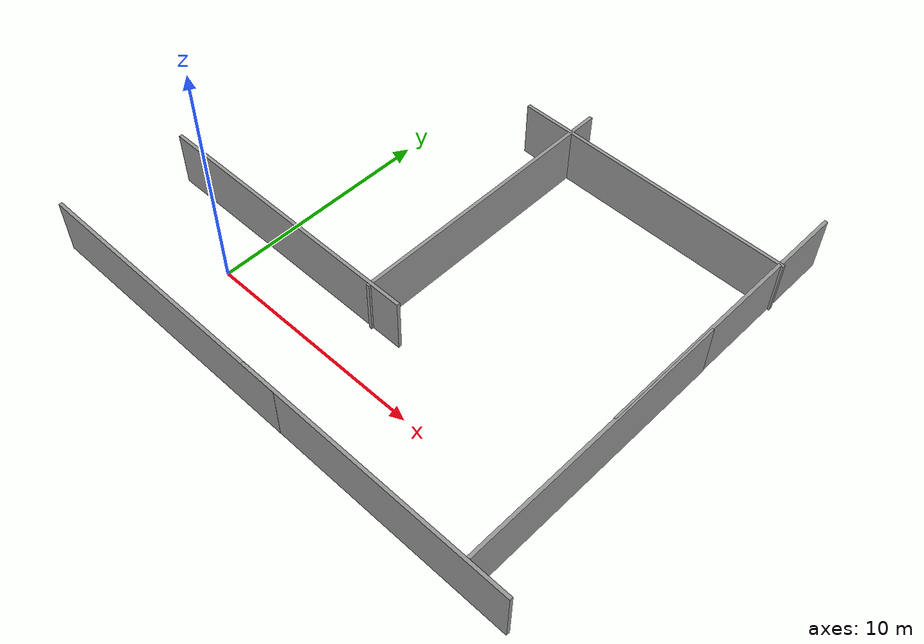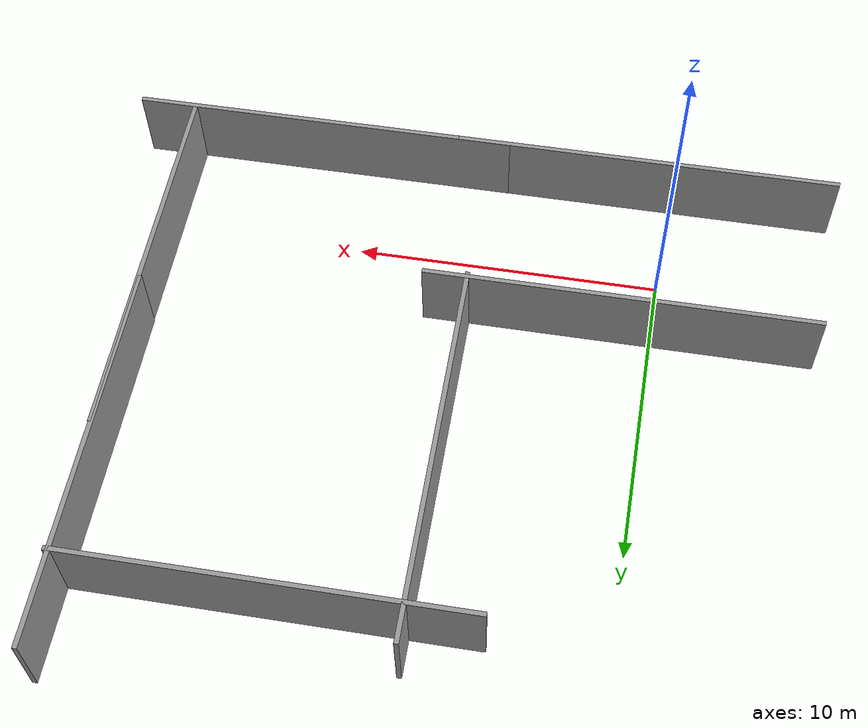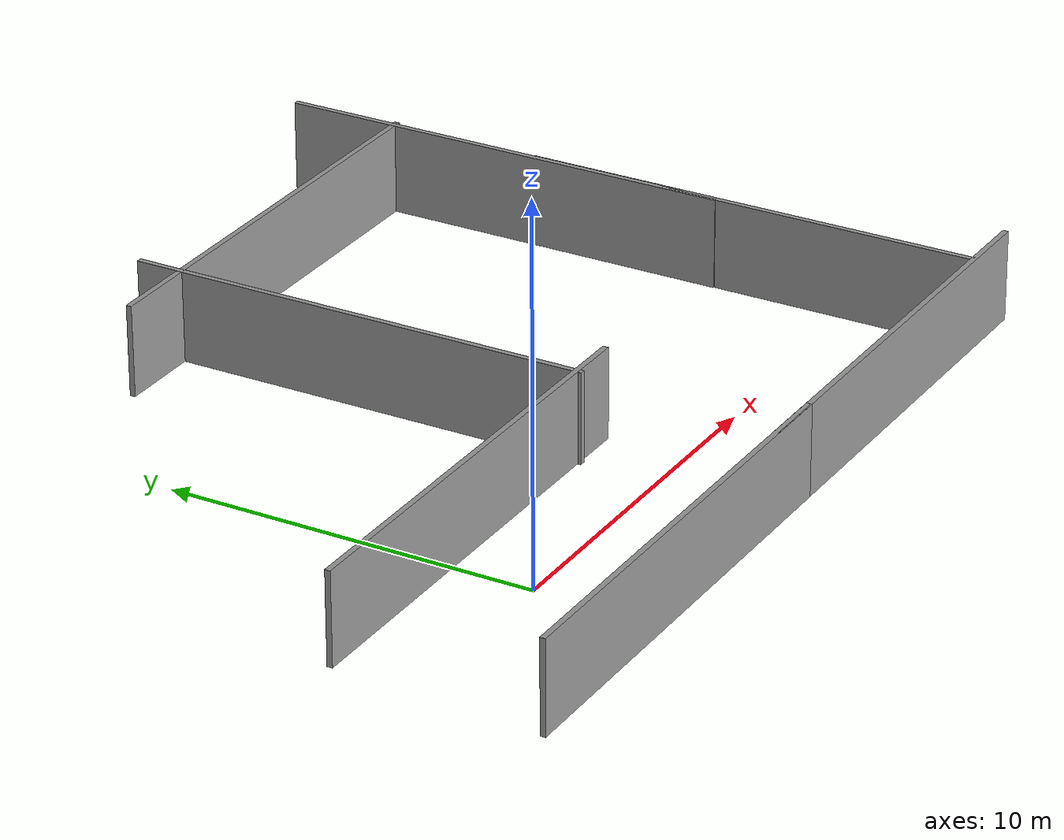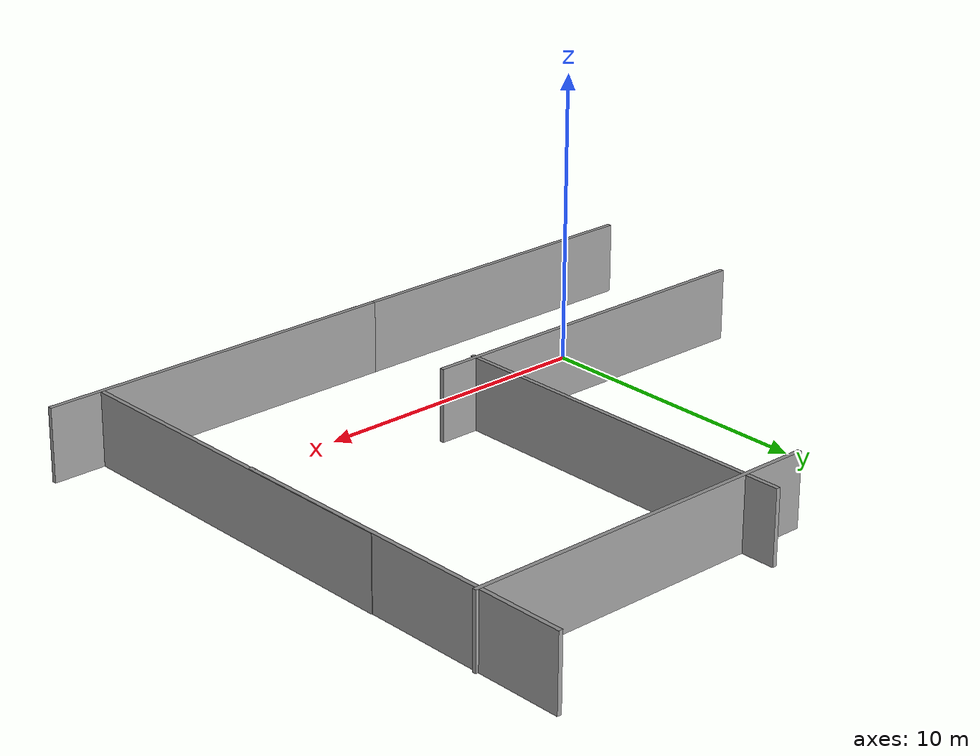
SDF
<sdf version="1.6">
 <world name="default">
  <light name="sun" type="directional">
   <pose>0 0 10 0 -0 0</pose>
   <diffuse>0.8 0.8 0.8 1</diffuse>
   <specular>0.2 0.2 0.2 1</specular>
   <attenuation>
    <range>1000</range>
    <constant>0.9</constant>
    <linear>0.01</linear>
    <quadratic>0.001</quadratic>
   </attenuation>
   <direction>-0.5 0.1 -0.9</direction>
  </light>
  <gravity>0 0 -9.8</gravity>
  <magnetic_field>6e-06 2.3e-05 -4.2e-05</magnetic_field>
  <atmosphere type="adiabatic"/>
  <physics name="default_physics" default="0" type="ode">
   <max_step_size>0.001</max_step_size>
   <real_time_factor>1</real_time_factor>
   <real_time_update_rate>1000</real_time_update_rate>
  </physics>
  <scene><ambient>0.4 0.4 0.4 1</ambient><background>0.7 0.7 0.7 1</background><shadows>1</shadows></scene>
  <spherical_coordinates>
   <surface_model>EARTH_WGS84</surface_model>
   <latitude_deg>0</latitude_deg>
   <longitude_deg>0</longitude_deg>
   <elevation>0</elevation>
   <heading_deg>0</heading_deg>
  </spherical_coordinates>
  <model name="walluse">
   <pose>0.848569 -3.41982 0 0 -0 0</pose>
   <link name="Wall_0">
    <collision name="Wall_0_Collision">
     <geometry><box><size>12.75 0.15 2.5</size></box></geometry>
     <pose>0 0 1.25 0 -0 0</pose>
    </collision>
    <visual name="Wall_0_Visual">
     <pose>0 0 1.25 0 -0 0</pose>
     <geometry><box><size>12.75 0.15 2.5</size></box></geometry>
     <material>
      <script><uri>file://media/materials/scripts/gazebo.material</uri><name>Gazebo/Grey</name></script>
      <ambient>1 1 1 1</ambient>
     </material>
     <meta><layer>0</layer></meta>
    </visual>
   </link>
   <static>1</static>
  </model>
  <model name="walluse_clone">
   <pose>1.09854 2.24298 0 0 -0 0</pose>
   <link name="Wall_0">
    <collision name="Wall_0_Collision">
     <geometry><box><size>12.75 0.15 2.5</size></box></geometry>
     <pose>0 0 1.25 0 -0 0</pose>
    </collision>
    <visual name="Wall_0_Visual">
     <pose>0 0 1.25 0 -0 0</pose>
     <geometry><box><size>12.75 0.15 2.5</size></box></geometry>
     <material>
      <script><uri>file://media/materials/scripts/gazebo.material</uri><name>Gazebo/Grey</name></script>
      <ambient>1 1 1 1</ambient>
     </material>
     <meta><layer>0</layer></meta>
    </visual>
   </link>
   <static>1</static>
  </model>
  <model name="walluse_clone_1">
   <pose>11.8457 -3.41662 0 0 -0 0</pose>
   <link name="Wall_0">
    <collision name="Wall_0_Collision">
     <geometry><box><size>12.75 0.15 2.5</size></box></geometry>
     <pose>0 0 1.25 0 -0 0</pose>
    </collision>
    <visual name="Wall_0_Visual">
     <pose>0 0 1.25 0 -0 0</pose>
     <geometry><box><size>12.75 0.15 2.5</size></box></geometry>
     <material>
      <script><uri>file://media/materials/scripts/gazebo.material</uri><name>Gazebo/Grey</name></script>
      <ambient>1 1 1 1</ambient>
     </material>
     <meta><layer>0</layer></meta>
    </visual>
   </link>
   <static>1</static>
  </model>
  <model name="walluse_clone_0">
   <pose>16.2958 2.95946 0 0 -0 1.57672</pose>
   <link name="Wall_0">
    <collision name="Wall_0_Collision">
     <geometry><box><size>12.75 0.15 2.5</size></box></geometry>
     <pose>0 0 1.25 0 -0 0</pose>
    </collision>
    <visual name="Wall_0_Visual">
     <pose>0 0 1.25 0 -0 0</pose>
     <geometry><box><size>12.75 0.15 2.5</size></box></geometry>
     <material>
      <script><uri>file://media/materials/scripts/gazebo.material</uri><name>Gazebo/Grey</name></script>
      <ambient>1 1 1 1</ambient>
     </material>
     <meta><layer>0</layer></meta>
    </visual>
   </link>
   <static>1</static>
  </model>
  <model name="walluse_clone_0_clone">
   <pose>16.2293 10.259 0 0 -0 1.57672</pose>
   <link name="Wall_0">
    <collision name="Wall_0_Collision">
     <geometry><box><size>12.75 0.15 2.5</size></box></geometry>
     <pose>0 0 1.25 0 -0 0</pose>
    </collision>
    <visual name="Wall_0_Visual">
     <pose>0 0 1.25 0 -0 0</pose>
     <geometry><box><size>12.75 0.15 2.5</size></box></geometry>
     <material>
      <script><uri>file://media/materials/scripts/gazebo.material</uri><name>Gazebo/Grey</name></script>
      <ambient>1 1 1 1</ambient>
     </material>
     <meta><layer>0</layer></meta>
    </visual>
   </link>
   <static>1</static>
  </model>
  <model name="walluse_clone_1_clone">
   <pose>10.0005 13.5703 0 0 -0 0</pose>
   <link name="Wall_0">
    <collision name="Wall_0_Collision">
     <geometry><box><size>12.75 0.15 2.5</size></box></geometry>
     <pose>0 0 1.25 0 -0 0</pose>
    </collision>
    <visual name="Wall_0_Visual">
     <pose>0 0 1.25 0 -0 0</pose>
     <geometry><box><size>12.75 0.15 2.5</size></box></geometry>
     <material>
      <script><uri>file://media/materials/scripts/gazebo.material</uri><name>Gazebo/Grey</name></script>
      <ambient>1 1 1 1</ambient>
     </material>
     <meta><layer>0</layer></meta>
    </visual>
   </link>
   <static>1</static>
  </model>
  <model name="walluse_clone_0_clone_clone">
   <pose>5.98239 8.45043 0 0 -0 1.57672</pose>
   <link name="Wall_0">
    <collision name="Wall_0_Collision">
     <geometry><box><size>12.75 0.15 2.5</size></box></geometry>
     <pose>0 0 1.25 0 -0 0</pose>
    </collision>
    <visual name="Wall_0_Visual">
     <pose>0 0 1.25 0 -0 0</pose>
     <geometry><box><size>12.75 0.15 2.5</size></box></geometry>
     <material>
      <script><uri>file://media/materials/scripts/gazebo.material</uri><name>Gazebo/Grey</name></script>
      <ambient>1 1 1 1</ambient>
     </material>
     <meta><layer>0</layer></meta>
    </visual>
   </link>
   <static>1</static>
  </model>
 </world>
</sdf>
